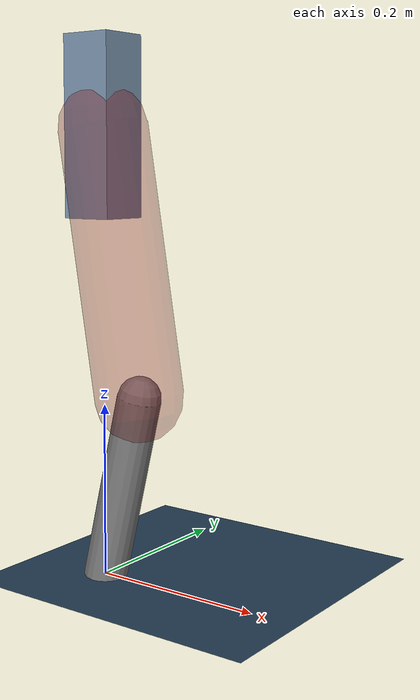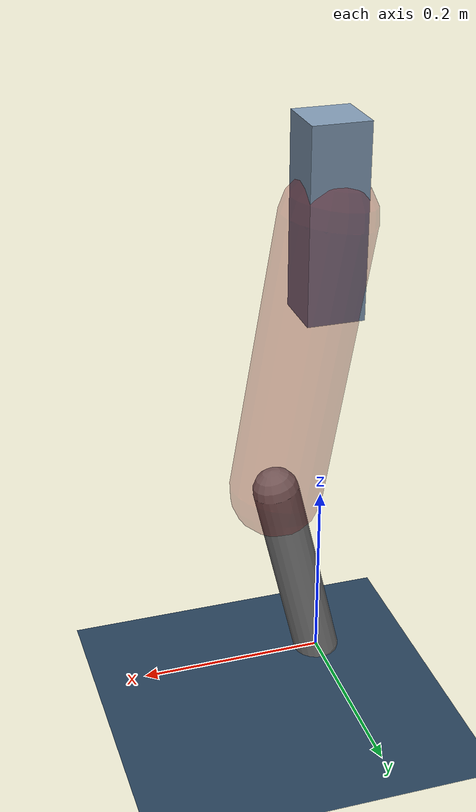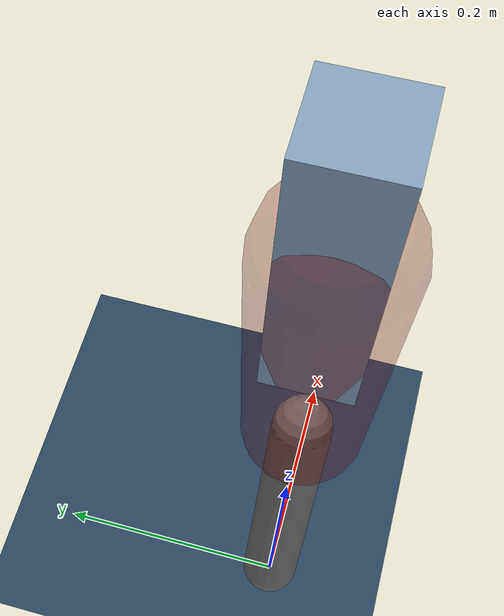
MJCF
<mujoco model="Hopper2D">
	<compiler inertiafromgeom="true" angle="radian" />
	<option timestep="0.001" integrator="implicit" cone="elliptic" solver="Newton" tolerance="1e-10" />

	<default>
		<geom contype="1" conaffinity="1" condim="3" friction="2 0.005 0.0001" solref="0.005 1" />
		<joint limited="true" damping="0.1" />
	</default>

	<asset>
		<texture name="skybox" type="skybox" builtin="gradient" rgb1=".4 .6 .8" rgb2="0 0 0" width="800" height="800" />
		<texture name="grid" type="2d" builtin="checker" rgb1=".1 .2 .3" rgb2=".2 .3 .4" width="300" height="300" mark="edge" markrgb=".2 .3 .4" />
		<material name="ground" texture="grid" texrepeat="1 1" texuniform="true" reflectance="0.1" />
		<material name="leg" rgba="0.5 0.6 0.7 1" />
	</asset>

	<worldbody>

		<geom name="floor" type="plane" size="5 5 0.25" material="ground" />

		<light directional="false" diffuse="0.8 0.8 0.8" specular="0.3 0.3 0.3" pos="0 0 2" dir="0 0 -1" />
		<light mode="targetbodycom" target="base" directional="false" diffuse="0.8 0.8 0.8" specular="0.3 0.3 0.3" pos="0 0 2" dir="0 0 -1" />

		<camera name="fixed" pos="0 -2 1" xyaxes="1 0 0 0 0 1" />
		<camera name="tracking" mode="trackcom" pos="0 -3 1" />

		<body name="root" pos="0 0 0.5127758166816566">
			<joint name="slide_x" type="slide" axis="1 0 0" range="-100 100" />
			<joint name="slide_z" type="slide" axis="0 0 1" range="0 10" />

			<body name="base" pos="0 0 0">
				<geom name="torso" type="box" size="0.03 0.03 0.1" mass="3.342" material="leg" />

				<body name="link1" pos="0 0 0" euler="0 1.4042513463687574 0">
					<joint type="hinge" axis="0 -1 0" pos="0 0 0" name="hinge1" limited="true" range="-3.14 3.14" stiffness="0" damping="0.1" />
					<geom name="thigh" type="capsule" fromto="0 0 0 0.3028802332005849 0 0" size="0.05" rgba="0.5 0 0 0.3" mass="0.9965646529616377" />

					<body name="link2" pos="0.3028802332005849 0 0" euler="0 0.39691426756234865 0">
						<joint type="hinge" axis="0 -1 0" pos="0 0 0" name="hinge2" limited="true" range="-3.14 3.14" stiffness="0" damping="0.1" />
						<geom name="shank" type="capsule" fromto="0 0 0 0.21989558348107172 0 0" size="0.025" mass="0.4176060251329646" />

					</body>
				</body>
			</body>
		</body>
	</worldbody>

	<actuator>
		<motor name="torque1" joint="hinge1" ctrlrange="-108.77131061726483 108.77131061726483" ctrllimited="true" gear="1" />
		<motor name="torque2" joint="hinge2" ctrlrange="-91.86732021126713 91.86732021126713" ctrllimited="true" gear="1" />
	</actuator>
</mujoco>
